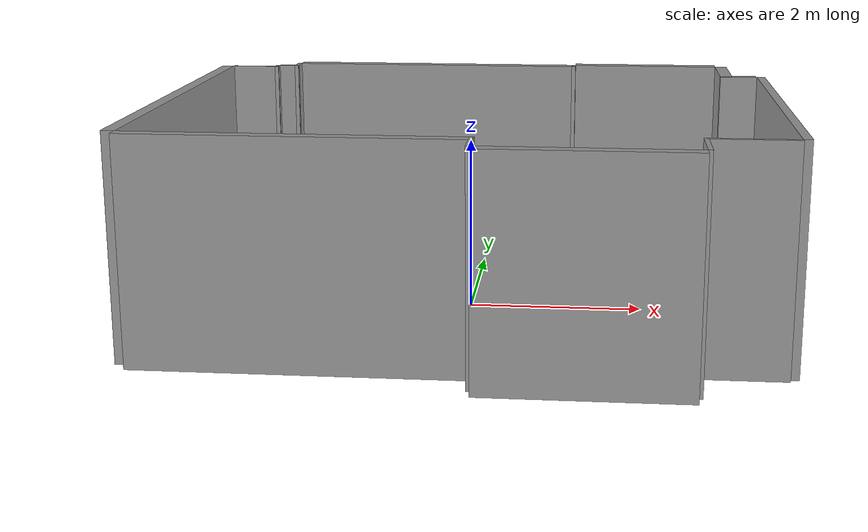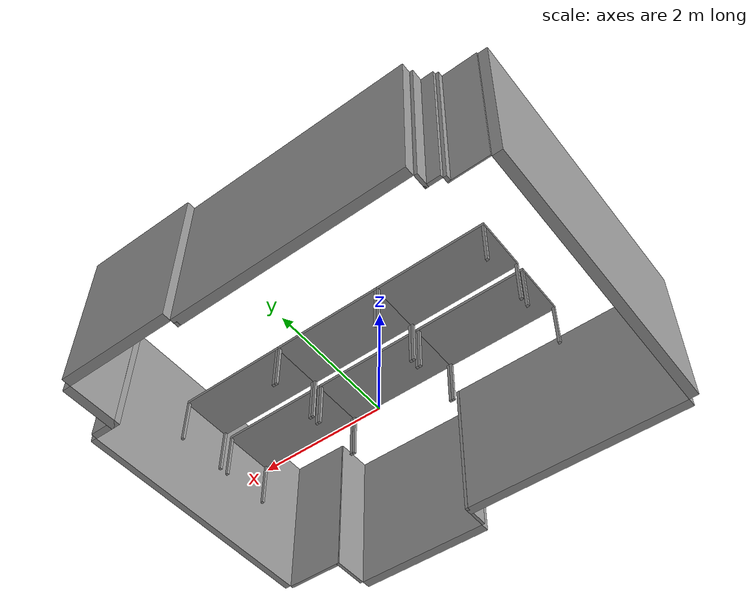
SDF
<?xml version="1.0" ?>
<sdf version="1.7">
  <model name="pic4ser">
    <static>true</static>

    <!-- MURI (pic4ser_walls)    -->
    <model name='pic4ser_walls'>
      <pose>0 0 0 0 -0 0</pose>
      <link name='Wall_12'>
        <collision name='Wall_12_Collision'>
          <geometry><box><size>4.15 0.1 2.5</size></box></geometry>
          <pose>0 0 1.25 0 -0 0</pose>
        </collision>
        <visual name='Wall_12_Visual'>
          <pose>0 0 1.25 0 -0 0</pose>
          <geometry><box><size>4.15 0.1 2.5</size></box></geometry>
          <material><script><uri>file://media/materials/scripts/gazebo.material</uri><name>Gazebo/Grey</name></script></material>
        </visual>
        <pose>3.50419 -0.141611 0 0 -0 -1.5708</pose>
      </link>
      <link name='Wall_15'>
        <collision name='Wall_15_Collision'>
          <geometry><box><size>0.45 0.1 2.5</size></box></geometry>
          <pose>0 0 1.25 0 -0 0</pose>
        </collision>
        <visual name='Wall_15_Visual'>
          <pose>0 0 1.25 0 -0 0</pose>
          <geometry><box><size>0.45 0.1 2.5</size></box></geometry>
          <material><script><uri>file://media/materials/scripts/gazebo.material</uri><name>Gazebo/Grey</name></script></material>
        </visual>
        <pose>3.22241 1.97278 0 0 -0 3.14159</pose>
      </link>
      <link name='Wall_17'>
        <collision name='Wall_17_Collision'>
          <geometry><box><size>0.9 0.15 2.5</size></box></geometry>
          <pose>0 0 1.25 0 -0 0</pose>
        </collision>
        <visual name='Wall_17_Visual'>
          <pose>0 0 1.25 0 -0 0</pose>
          <geometry><box><size>0.9 0.15 2.5</size></box></geometry>
          <material><script><uri>file://media/materials/scripts/gazebo.material</uri><name>Gazebo/Grey</name></script></material>
        </visual>
        <pose>3.07328 2.37506 0 0 -0 -1.5708</pose>
      </link>
      <link name='Wall_19'>
        <collision name='Wall_19_Collision'>
          <geometry><box><size>1.85 0.15 2.5</size></box></geometry>
          <pose>0 0 1.25 0 -0 0</pose>
        </collision>
        <visual name='Wall_19_Visual'>
          <pose>0 0 1.25 0 -0 0</pose>
          <geometry><box><size>1.85 0.15 2.5</size></box></geometry>
          <material><script><uri>file://media/materials/scripts/gazebo.material</uri><name>Gazebo/Grey</name></script></material>
        </visual>
        <pose>2.0754 2.89743 0 0 -0 3.14159</pose>
      </link>
      <link name='Wall_21'>
        <collision name='Wall_21_Collision'>
          <geometry><box><size>0.13 0.05 2.5</size></box></geometry>
          <pose>0 0 1.25 0 -0 0</pose>
        </collision>
        <visual name='Wall_21_Visual'>
          <pose>0 0 1.25 0 -0 0</pose>
          <geometry><box><size>0.13 0.05 2.5</size></box></geometry>
          <material><script><uri>file://media/materials/scripts/gazebo.material</uri><name>Gazebo/Grey</name></script></material>
        </visual>
        <pose>1.12412 2.75661 0 0 -0 -1.5708</pose>
      </link>
      <link name='Wall_24'>
        <collision name='Wall_24_Collision'>
          <geometry><box><size>3.7 0.15 2.5</size></box></geometry>
          <pose>0 0 1.25 0 -0 0</pose>
        </collision>
        <visual name='Wall_24_Visual'>
          <pose>0 0 1.25 0 -0 0</pose>
          <geometry><box><size>3.7 0.15 2.5</size></box></geometry>
          <material><script><uri>file://media/materials/scripts/gazebo.material</uri><name>Gazebo/Grey</name></script></material>
        </visual>
        <pose>-0.699771 2.7674 0 0 -0 3.14159</pose>
      </link>
      <link name='Wall_28'>
        <collision name='Wall_28_Collision'>
          <geometry><box><size>0.25 0.05 2.5</size></box></geometry>
          <pose>0 0 1.25 0 -0 0</pose>
        </collision>
        <visual name='Wall_28_Visual'>
          <pose>0 0 1.25 0 -0 0</pose>
          <geometry><box><size>0.25 0.05 2.5</size></box></geometry>
          <material><script><uri>file://media/materials/scripts/gazebo.material</uri><name>Gazebo/Grey</name></script></material>
        </visual>
        <pose>-2.67683 2.48848 0 0 -0 3.14159</pose>
      </link>
      <link name='Wall_34'>
        <collision name='Wall_34_Collision'>
          <geometry><box><size>0.1 0.05 2.5</size></box></geometry>
          <pose>0 0 1.25 0 -0 0</pose>
        </collision>
        <visual name='Wall_34_Visual'>
          <pose>0 0 1.25 0 -0 0</pose>
          <geometry><box><size>0.1 0.05 2.5</size></box></geometry>
          <material><script><uri>file://media/materials/scripts/gazebo.material</uri><name>Gazebo/Grey</name></script></material>
        </visual>
        <pose>-2.82829 2.41619 0 0 -0 -1.5708</pose>
      </link>
      <link name='Wall_39'>
        <collision name='Wall_39_Collision'>
          <geometry><box><size>0.6 0.02 2.5</size></box></geometry>
          <pose>0 0 1.25 0 -0 0</pose>
        </collision>
        <visual name='Wall_39_Visual'>
          <pose>0 0 1.25 0 -0 0</pose>
          <geometry><box><size>0.6 0.02 2.5</size></box></geometry>
          <material><script><uri>file://media/materials/scripts/gazebo.material</uri><name>Gazebo/Grey</name></script></material>
        </visual>
        <pose>-3.10268 2.3769 0 0 -0 3.14159</pose>
      </link>
      <link name='Wall_41'>
        <collision name='Wall_41_Collision'>
          <geometry><box><size>0.23 0.05 2.5</size></box></geometry>
          <pose>0 0 1.25 0 -0 0</pose>
        </collision>
        <visual name='Wall_41_Visual'>
          <pose>0 0 1.25 0 -0 0</pose>
          <geometry><box><size>0.23 0.05 2.5</size></box></geometry>
          <material><script><uri>file://media/materials/scripts/gazebo.material</uri><name>Gazebo/Grey</name></script></material>
        </visual>
        <pose>-2.57767 2.57621 0 0 -0 -1.5708</pose>
      </link>
      <link name='Wall_43'>
        <collision name='Wall_43_Collision'>
          <geometry><box><size>4.74 0.15 2.5</size></box></geometry>
          <pose>0 0 1.25 0 -0 0</pose>
        </collision>
        <visual name='Wall_43_Visual'>
          <pose>0 0 1.25 0 -0 0</pose>
          <geometry><box><size>4.74 0.15 2.5</size></box></geometry>
          <material><script><uri>file://media/materials/scripts/gazebo.material</uri><name>Gazebo/Grey</name></script></material>
        </visual>
        <pose>-3.47918 -0.003711 0 0 -0 1.5708</pose>
      </link>
      <link name='Wall_45'>
        <collision name='Wall_45_Collision'>
          <geometry><box><size>3.65 0.15 2.5</size></box></geometry>
          <pose>0 0 1.25 0 -0 0</pose>
        </collision>
        <visual name='Wall_45_Visual'>
          <pose>0 0 1.25 0 -0 0</pose>
          <geometry><box><size>3.65 0.15 2.5</size></box></geometry>
          <material><script><uri>file://media/materials/scripts/gazebo.material</uri><name>Gazebo/Grey</name></script></material>
        </visual>
        <pose>-1.58284 -2.45146 0 0 -0 3.14159</pose>
      </link>
      <link name='Wall_47'>
        <collision name='Wall_47_Collision'>
          <geometry><box><size>0.45 0.05 2.5</size></box></geometry>
          <pose>0 0 1.25 0 -0 0</pose>
        </collision>
        <visual name='Wall_47_Visual'>
          <pose>0 0 1.25 0 -0 0</pose>
          <geometry><box><size>0.45 0.05 2.5</size></box></geometry>
          <material><script><uri>file://media/materials/scripts/gazebo.material</uri><name>Gazebo/Grey</name></script></material>
        </visual>
        <pose>0.217206 -2.599 0 0 -0 -1.5708</pose>
      </link>
      <link name='Wall_49'>
        <collision name='Wall_49_Collision'>
          <geometry><box><size>2.25 0.15 2.5</size></box></geometry>
          <pose>0 0 1.25 0 -0 0</pose>
        </collision>
        <visual name='Wall_49_Visual'>
          <pose>0 0 1.25 0 -0 0</pose>
          <geometry><box><size>2.25 0.15 2.5</size></box></geometry>
          <material><script><uri>file://media/materials/scripts/gazebo.material</uri><name>Gazebo/Grey</name></script></material>
        </visual>
        <pose>1.36639 -2.89743 0 0 -0 0</pose>
      </link>
      <link name='Wall_51'>
        <collision name='Wall_51_Collision'>
          <geometry><box><size>0.6 0.05 2.5</size></box></geometry>
          <pose>0 0 1.25 0 -0 0</pose>
        </collision>
        <visual name='Wall_51_Visual'>
          <pose>0 0 1.25 0 -0 0</pose>
          <geometry><box><size>0.6 0.05 2.5</size></box></geometry>
          <material><script><uri>file://media/materials/scripts/gazebo.material</uri><name>Gazebo/Grey</name></script></material>
        </visual>
        <pose>2.51522 -2.52622 0 0 -0 -1.5708</pose>
      </link>
      <link name='Wall_53'>
        <collision name='Wall_53_Collision'>
          <geometry><box><size>0.95 0.05 2.5</size></box></geometry>
          <pose>0 0 1.25 0 -0 0</pose>
        </collision>
        <visual name='Wall_53_Visual'>
          <pose>0 0 1.25 0 -0 0</pose>
          <geometry><box><size>0.95 0.05 2.5</size></box></geometry>
          <material><script><uri>file://media/materials/scripts/gazebo.material</uri><name>Gazebo/Grey</name></script></material>
        </visual>
        <pose>2.98296 -2.24705 0 0 -0 0</pose>
      </link>
      <static>1</static>
    </model>

    <!-- TAVOLI                  -->

    <!-- Tavolo Base -->
    <model name='pic4ser_table'>
      <pose>-1.724 0.815 0 0 -0 0</pose>
      <static>1</static>
      <link name='link_1'>
        <pose>0 0 0.725 0 -0 0</pose>
        <visual name='visual'>
          <geometry><box><size>1.7 0.8 0.05</size></box></geometry>
          <material><script><uri>file://media/materials/scripts/gazebo.material</uri><name>Gazebo/Grey</name></script></material>
        </visual>
        <collision name='collision'>
          <geometry><box><size>1.7 0.8 0.05</size></box></geometry>
        </collision>
      </link>
      <link name='link_2'>
        <pose>0.83 -0.38 0.35 0 -0 0</pose>
        <visual name='visual'>
          <geometry><box><size>0.04 0.04 0.7</size></box></geometry>
          <material><script><uri>file://media/materials/scripts/gazebo.material</uri><name>Gazebo/Grey</name></script></material>
        </visual>
        <collision name='collision'>
          <geometry><box><size>0.04 0.04 0.7</size></box></geometry>
        </collision>
      </link>
      <link name='link_2_clone'>
        <pose>-0.83 -0.38 0.35 0 -0 0</pose>
        <visual name='visual'>
          <geometry><box><size>0.04 0.04 0.7</size></box></geometry>
          <material><script><uri>file://media/materials/scripts/gazebo.material</uri><name>Gazebo/Grey</name></script></material>
        </visual>
        <collision name='collision'>
          <geometry><box><size>0.04 0.04 0.7</size></box></geometry>
        </collision>
      </link>
      <link name='link_2_clone_1'>
        <pose>0.83 0.38 0.35 0 -0 0</pose>
        <visual name='visual'>
          <geometry><box><size>0.04 0.04 0.7</size></box></geometry>
          <material><script><uri>file://media/materials/scripts/gazebo.material</uri><name>Gazebo/Grey</name></script></material>
        </visual>
        <collision name='collision'>
          <geometry><box><size>0.04 0.04 0.7</size></box></geometry>
        </collision>
      </link>
      <link name='link_2_clone_1_clone'>
        <pose>-0.83 0.38 0.35 0 -0 0</pose>
        <visual name='visual'>
          <geometry><box><size>0.04 0.04 0.7</size></box></geometry>
          <material><script><uri>file://media/materials/scripts/gazebo.material</uri><name>Gazebo/Grey</name></script></material>
        </visual>
        <collision name='collision'>
          <geometry><box><size>0.04 0.04 0.7</size></box></geometry>
        </collision>
      </link>
    </model>

    <!-- Tavolo 0 -->
    <model name='pic4ser_table_0'>
      <pose>-1.724 -0.085 0 0 -0 0</pose>
      <static>1</static>
      <link name='link_1'>
        <pose>0 0 0.725 0 -0 0</pose>
        <visual name='visual'><geometry><box><size>1.7 0.8 0.05</size></box></geometry><material><script><uri>file://media/materials/scripts/gazebo.material</uri><name>Gazebo/Grey</name></script></material></visual>
        <collision name='collision'><geometry><box><size>1.7 0.8 0.05</size></box></geometry></collision>
      </link>
      <link name='link_2'>
        <pose>0.83 -0.38 0.35 0 -0 0</pose>
        <visual name='visual'><geometry><box><size>0.04 0.04 0.7</size></box></geometry><material><script><uri>file://media/materials/scripts/gazebo.material</uri><name>Gazebo/Grey</name></script></material></visual>
        <collision name='collision'><geometry><box><size>0.04 0.04 0.7</size></box></geometry></collision>
      </link>
      <link name='link_2_clone'>
        <pose>-0.83 -0.38 0.35 0 -0 0</pose>
        <visual name='visual'><geometry><box><size>0.04 0.04 0.7</size></box></geometry><material><script><uri>file://media/materials/scripts/gazebo.material</uri><name>Gazebo/Grey</name></script></material></visual>
        <collision name='collision'><geometry><box><size>0.04 0.04 0.7</size></box></geometry></collision>
      </link>
      <link name='link_2_clone_1'>
        <pose>0.83 0.38 0.35 0 -0 0</pose>
        <visual name='visual'><geometry><box><size>0.04 0.04 0.7</size></box></geometry><material><script><uri>file://media/materials/scripts/gazebo.material</uri><name>Gazebo/Grey</name></script></material></visual>
        <collision name='collision'><geometry><box><size>0.04 0.04 0.7</size></box></geometry></collision>
      </link>
      <link name='link_2_clone_1_clone'>
        <pose>-0.83 0.38 0.35 0 -0 0</pose>
        <visual name='visual'><geometry><box><size>0.04 0.04 0.7</size></box></geometry><material><script><uri>file://media/materials/scripts/gazebo.material</uri><name>Gazebo/Grey</name></script></material></visual>
        <collision name='collision'><geometry><box><size>0.04 0.04 0.7</size></box></geometry></collision>
      </link>
    </model>

    <!-- Tavolo 1 -->
    <model name='pic4ser_table_1'>
      <pose>-0.025 0.815 0 0 -0 0</pose>
      <static>1</static>
      <link name='link_1'>
        <pose>0 0 0.725 0 -0 0</pose>
        <visual name='visual'><geometry><box><size>1.7 0.8 0.05</size></box></geometry><material><script><uri>file://media/materials/scripts/gazebo.material</uri><name>Gazebo/Grey</name></script></material></visual>
        <collision name='collision'><geometry><box><size>1.7 0.8 0.05</size></box></geometry></collision>
      </link>
      <link name='link_2'>
        <pose>0.83 -0.38 0.35 0 -0 0</pose>
        <visual name='visual'><geometry><box><size>0.04 0.04 0.7</size></box></geometry><material><script><uri>file://media/materials/scripts/gazebo.material</uri><name>Gazebo/Grey</name></script></material></visual>
        <collision name='collision'><geometry><box><size>0.04 0.04 0.7</size></box></geometry></collision>
      </link>
      <link name='link_2_clone'>
        <pose>-0.83 -0.38 0.35 0 -0 0</pose>
        <visual name='visual'><geometry><box><size>0.04 0.04 0.7</size></box></geometry><material><script><uri>file://media/materials/scripts/gazebo.material</uri><name>Gazebo/Grey</name></script></material></visual>
        <collision name='collision'><geometry><box><size>0.04 0.04 0.7</size></box></geometry></collision>
      </link>
      <link name='link_2_clone_1'>
        <pose>0.83 0.38 0.35 0 -0 0</pose>
        <visual name='visual'><geometry><box><size>0.04 0.04 0.7</size></box></geometry><material><script><uri>file://media/materials/scripts/gazebo.material</uri><name>Gazebo/Grey</name></script></material></visual>
        <collision name='collision'><geometry><box><size>0.04 0.04 0.7</size></box></geometry></collision>
      </link>
      <link name='link_2_clone_1_clone'>
        <pose>-0.83 0.38 0.35 0 -0 0</pose>
        <visual name='visual'><geometry><box><size>0.04 0.04 0.7</size></box></geometry><material><script><uri>file://media/materials/scripts/gazebo.material</uri><name>Gazebo/Grey</name></script></material></visual>
        <collision name='collision'><geometry><box><size>0.04 0.04 0.7</size></box></geometry></collision>
      </link>
    </model>

    <!-- Tavolo 2 -->
    <model name='pic4ser_table_2'>
      <pose>-0.025 -0.085 0 0 -0 0</pose>
      <static>1</static>
      <link name='link_1'>
        <pose>0 0 0.725 0 -0 0</pose>
        <visual name='visual'><geometry><box><size>1.7 0.8 0.05</size></box></geometry><material><script><uri>file://media/materials/scripts/gazebo.material</uri><name>Gazebo/Grey</name></script></material></visual>
        <collision name='collision'><geometry><box><size>1.7 0.8 0.05</size></box></geometry></collision>
      </link>
      <link name='link_2'>
        <pose>0.83 -0.38 0.35 0 -0 0</pose>
        <visual name='visual'><geometry><box><size>0.04 0.04 0.7</size></box></geometry><material><script><uri>file://media/materials/scripts/gazebo.material</uri><name>Gazebo/Grey</name></script></material></visual>
        <collision name='collision'><geometry><box><size>0.04 0.04 0.7</size></box></geometry></collision>
      </link>
      <link name='link_2_clone'>
        <pose>-0.83 -0.38 0.35 0 -0 0</pose>
        <visual name='visual'><geometry><box><size>0.04 0.04 0.7</size></box></geometry><material><script><uri>file://media/materials/scripts/gazebo.material</uri><name>Gazebo/Grey</name></script></material></visual>
        <collision name='collision'><geometry><box><size>0.04 0.04 0.7</size></box></geometry></collision>
      </link>
      <link name='link_2_clone_1'>
        <pose>0.83 0.38 0.35 0 -0 0</pose>
        <visual name='visual'><geometry><box><size>0.04 0.04 0.7</size></box></geometry><material><script><uri>file://media/materials/scripts/gazebo.material</uri><name>Gazebo/Grey</name></script></material></visual>
        <collision name='collision'><geometry><box><size>0.04 0.04 0.7</size></box></geometry></collision>
      </link>
      <link name='link_2_clone_1_clone'>
        <pose>-0.83 0.38 0.35 0 -0 0</pose>
        <visual name='visual'><geometry><box><size>0.04 0.04 0.7</size></box></geometry><material><script><uri>file://media/materials/scripts/gazebo.material</uri><name>Gazebo/Grey</name></script></material></visual>
        <collision name='collision'><geometry><box><size>0.04 0.04 0.7</size></box></geometry></collision>
      </link>
    </model>

    <!-- Tavolo 3 -->
    <model name='pic4ser_table_3'>
      <pose>1.676 0.815 0 0 -0 0</pose>
      <static>1</static>
      <link name='link_1'>
        <pose>0 0 0.725 0 -0 0</pose>
        <visual name='visual'><geometry><box><size>1.7 0.8 0.05</size></box></geometry><material><script><uri>file://media/materials/scripts/gazebo.material</uri><name>Gazebo/Grey</name></script></material></visual>
        <collision name='collision'><geometry><box><size>1.7 0.8 0.05</size></box></geometry></collision>
      </link>
      <link name='link_2'>
        <pose>0.83 -0.38 0.35 0 -0 0</pose>
        <visual name='visual'><geometry><box><size>0.04 0.04 0.7</size></box></geometry><material><script><uri>file://media/materials/scripts/gazebo.material</uri><name>Gazebo/Grey</name></script></material></visual>
        <collision name='collision'><geometry><box><size>0.04 0.04 0.7</size></box></geometry></collision>
      </link>
      <link name='link_2_clone'>
        <pose>-0.83 -0.38 0.35 0 -0 0</pose>
        <visual name='visual'><geometry><box><size>0.04 0.04 0.7</size></box></geometry><material><script><uri>file://media/materials/scripts/gazebo.material</uri><name>Gazebo/Grey</name></script></material></visual>
        <collision name='collision'><geometry><box><size>0.04 0.04 0.7</size></box></geometry></collision>
      </link>
      <link name='link_2_clone_1'>
        <pose>0.83 0.38 0.35 0 -0 0</pose>
        <visual name='visual'><geometry><box><size>0.04 0.04 0.7</size></box></geometry><material><script><uri>file://media/materials/scripts/gazebo.material</uri><name>Gazebo/Grey</name></script></material></visual>
        <collision name='collision'><geometry><box><size>0.04 0.04 0.7</size></box></geometry></collision>
      </link>
      <link name='link_2_clone_1_clone'>
        <pose>-0.83 0.38 0.35 0 -0 0</pose>
        <visual name='visual'><geometry><box><size>0.04 0.04 0.7</size></box></geometry><material><script><uri>file://media/materials/scripts/gazebo.material</uri><name>Gazebo/Grey</name></script></material></visual>
        <collision name='collision'><geometry><box><size>0.04 0.04 0.7</size></box></geometry></collision>
      </link>
    </model>

    <!-- Tavolo 4 -->
    <model name='pic4ser_table_4'>
      <pose>1.676 -0.085 0 0 -0 0</pose>
      <static>1</static>
      <link name='link_1'>
        <pose>0 0 0.725 0 -0 0</pose>
        <visual name='visual'><geometry><box><size>1.7 0.8 0.05</size></box></geometry><material><script><uri>file://media/materials/scripts/gazebo.material</uri><name>Gazebo/Grey</name></script></material></visual>
        <collision name='collision'><geometry><box><size>1.7 0.8 0.05</size></box></geometry></collision>
      </link>
      <link name='link_2'>
        <pose>0.83 -0.38 0.35 0 -0 0</pose>
        <visual name='visual'><geometry><box><size>0.04 0.04 0.7</size></box></geometry><material><script><uri>file://media/materials/scripts/gazebo.material</uri><name>Gazebo/Grey</name></script></material></visual>
        <collision name='collision'><geometry><box><size>0.04 0.04 0.7</size></box></geometry></collision>
      </link>
      <link name='link_2_clone'>
        <pose>-0.83 -0.38 0.35 0 -0 0</pose>
        <visual name='visual'><geometry><box><size>0.04 0.04 0.7</size></box></geometry><material><script><uri>file://media/materials/scripts/gazebo.material</uri><name>Gazebo/Grey</name></script></material></visual>
        <collision name='collision'><geometry><box><size>0.04 0.04 0.7</size></box></geometry></collision>
      </link>
      <link name='link_2_clone_1'>
        <pose>0.83 0.38 0.35 0 -0 0</pose>
        <visual name='visual'><geometry><box><size>0.04 0.04 0.7</size></box></geometry><material><script><uri>file://media/materials/scripts/gazebo.material</uri><name>Gazebo/Grey</name></script></material></visual>
        <collision name='collision'><geometry><box><size>0.04 0.04 0.7</size></box></geometry></collision>
      </link>
      <link name='link_2_clone_1_clone'>
        <pose>-0.83 0.38 0.35 0 -0 0</pose>
        <visual name='visual'><geometry><box><size>0.04 0.04 0.7</size></box></geometry><material><script><uri>file://media/materials/scripts/gazebo.material</uri><name>Gazebo/Grey</name></script></material></visual>
        <collision name='collision'><geometry><box><size>0.04 0.04 0.7</size></box></geometry></collision>
      </link>
    </model>

  </model>
</sdf>
